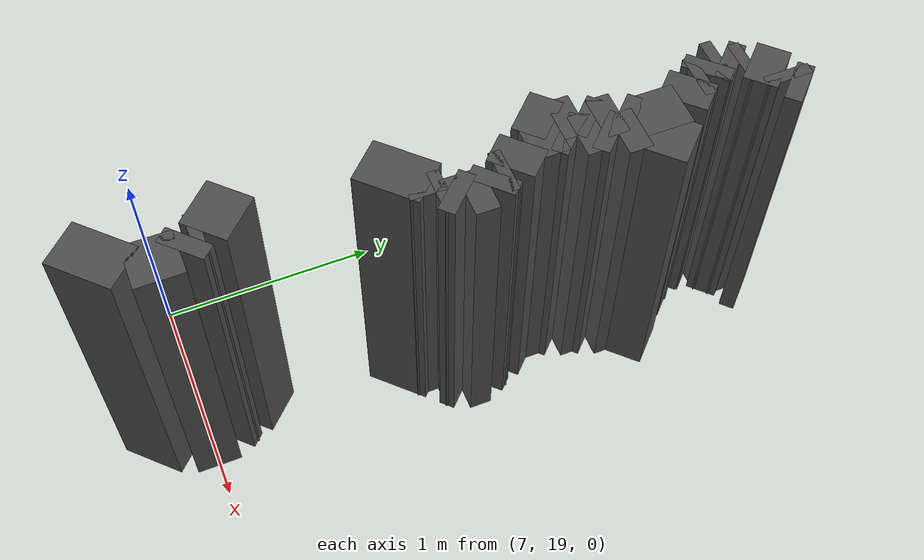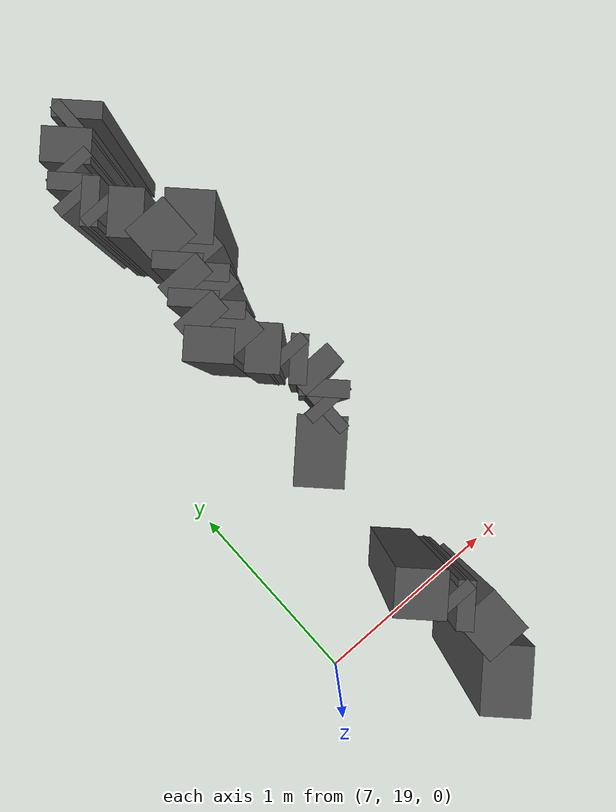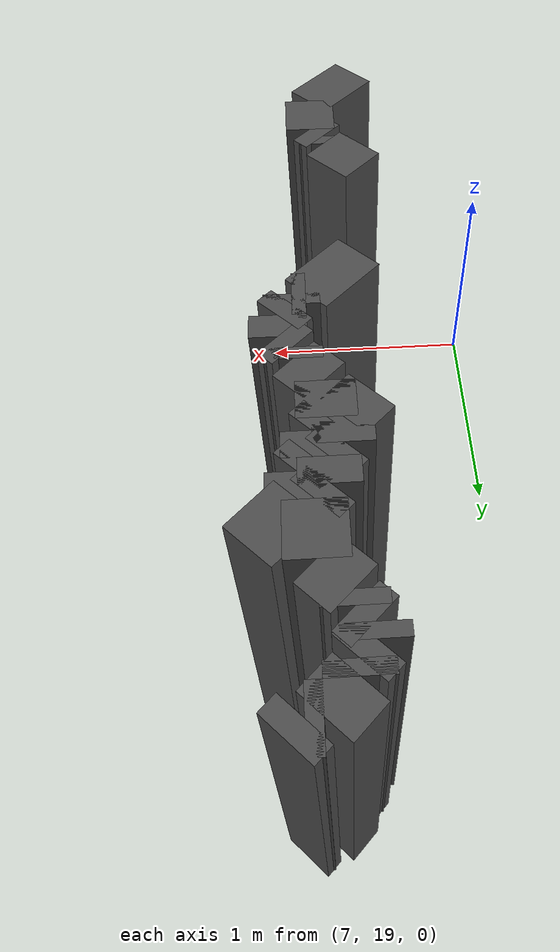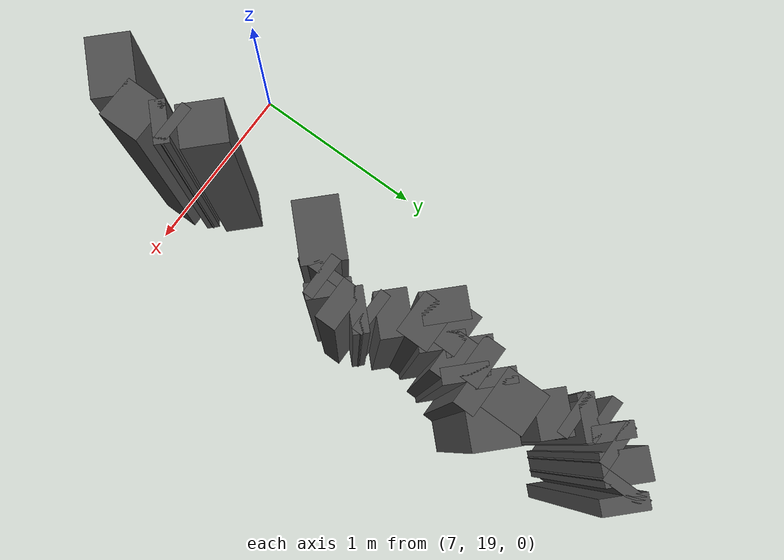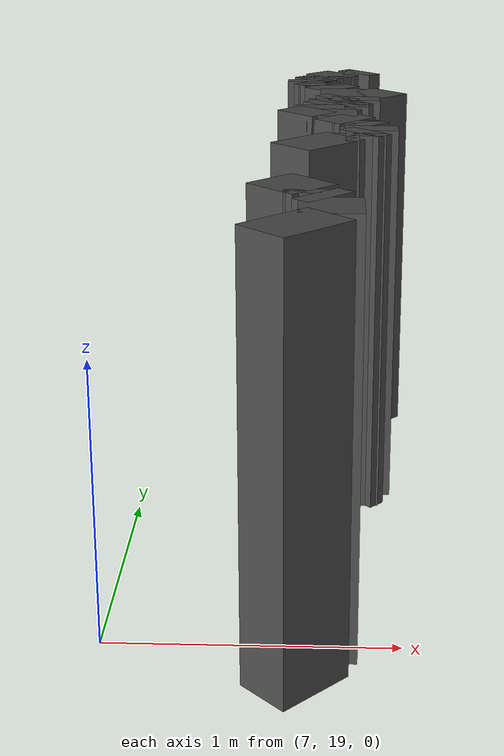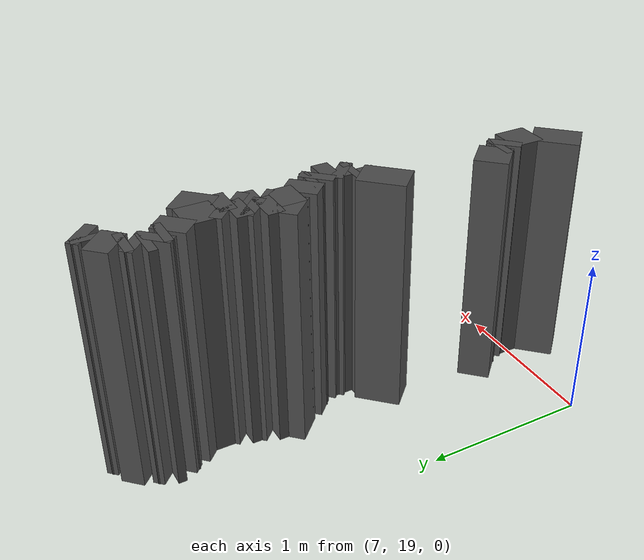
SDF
<sdf version="1.9">
 <model name="generated_walls">
  <static>true</static>
  <link name="wall_161_248">
   <pose>7.650 20.550 0.75 0 0 0.785</pose>
   <collision name="collision"><geometry><box><size>0.141 0.2 1.5</size></box></geometry></collision>
   <visual name="visual">
    <geometry><box><size>0.141 0.2 1.5</size></box></geometry>
    <material><ambient>0.3 0.3 0.3 1</ambient></material>
   </visual>
  </link>
  <link name="wall_161_249">
   <pose>7.700 20.650 0.75 0 0 1.571</pose>
   <collision name="collision"><geometry><box><size>0.100 0.2 1.5</size></box></geometry></collision>
   <visual name="visual">
    <geometry><box><size>0.100 0.2 1.5</size></box></geometry>
    <material><ambient>0.3 0.3 0.3 1</ambient></material>
   </visual>
  </link>
  <link name="wall_161_250">
   <pose>7.725 20.725 0.75 0 0 0.785</pose>
   <collision name="collision"><geometry><box><size>0.071 0.2 1.5</size></box></geometry></collision>
   <visual name="visual">
    <geometry><box><size>0.071 0.2 1.5</size></box></geometry>
    <material><ambient>0.3 0.3 0.3 1</ambient></material>
   </visual>
  </link>
  <link name="wall_161_251">
   <pose>7.750 20.800 0.75 0 0 1.571</pose>
   <collision name="collision"><geometry><box><size>0.100 0.2 1.5</size></box></geometry></collision>
   <visual name="visual">
    <geometry><box><size>0.100 0.2 1.5</size></box></geometry>
    <material><ambient>0.3 0.3 0.3 1</ambient></material>
   </visual>
  </link>
  <link name="wall_161_252">
   <pose>7.775 20.875 0.75 0 0 0.785</pose>
   <collision name="collision"><geometry><box><size>0.071 0.2 1.5</size></box></geometry></collision>
   <visual name="visual">
    <geometry><box><size>0.071 0.2 1.5</size></box></geometry>
    <material><ambient>0.3 0.3 0.3 1</ambient></material>
   </visual>
  </link>
  <link name="wall_161_253">
   <pose>7.800 21.000 0.75 0 0 1.571</pose>
   <collision name="collision"><geometry><box><size>0.200 0.2 1.5</size></box></geometry></collision>
   <visual name="visual">
    <geometry><box><size>0.200 0.2 1.5</size></box></geometry>
    <material><ambient>0.3 0.3 0.3 1</ambient></material>
   </visual>
  </link>
  <link name="wall_161_254">
   <pose>7.750 21.150 0.75 0 0 2.356</pose>
   <collision name="collision"><geometry><box><size>0.141 0.2 1.5</size></box></geometry></collision>
   <visual name="visual">
    <geometry><box><size>0.141 0.2 1.5</size></box></geometry>
    <material><ambient>0.3 0.3 0.3 1</ambient></material>
   </visual>
  </link>
  <link name="wall_161_255">
   <pose>7.700 21.225 0.75 0 0 1.571</pose>
   <collision name="collision"><geometry><box><size>0.050 0.2 1.5</size></box></geometry></collision>
   <visual name="visual">
    <geometry><box><size>0.050 0.2 1.5</size></box></geometry>
    <material><ambient>0.3 0.3 0.3 1</ambient></material>
   </visual>
  </link>
  <link name="wall_161_256">
   <pose>7.675 21.275 0.75 0 0 2.356</pose>
   <collision name="collision"><geometry><box><size>0.071 0.2 1.5</size></box></geometry></collision>
   <visual name="visual">
    <geometry><box><size>0.071 0.2 1.5</size></box></geometry>
    <material><ambient>0.3 0.3 0.3 1</ambient></material>
   </visual>
  </link>
  <link name="wall_161_257">
   <pose>7.650 21.325 0.75 0 0 1.571</pose>
   <collision name="collision"><geometry><box><size>0.050 0.2 1.5</size></box></geometry></collision>
   <visual name="visual">
    <geometry><box><size>0.050 0.2 1.5</size></box></geometry>
    <material><ambient>0.3 0.3 0.3 1</ambient></material>
   </visual>
  </link>
  <link name="wall_161_258">
   <pose>7.675 21.375 0.75 0 0 0.785</pose>
   <collision name="collision"><geometry><box><size>0.071 0.2 1.5</size></box></geometry></collision>
   <visual name="visual">
    <geometry><box><size>0.071 0.2 1.5</size></box></geometry>
    <material><ambient>0.3 0.3 0.3 1</ambient></material>
   </visual>
  </link>
  <link name="wall_161_259">
   <pose>7.700 21.425 0.75 0 0 1.571</pose>
   <collision name="collision"><geometry><box><size>0.050 0.2 1.5</size></box></geometry></collision>
   <visual name="visual">
    <geometry><box><size>0.050 0.2 1.5</size></box></geometry>
    <material><ambient>0.3 0.3 0.3 1</ambient></material>
   </visual>
  </link>
  <link name="wall_161_260">
   <pose>7.750 21.500 0.75 0 0 0.785</pose>
   <collision name="collision"><geometry><box><size>0.141 0.2 1.5</size></box></geometry></collision>
   <visual name="visual">
    <geometry><box><size>0.141 0.2 1.5</size></box></geometry>
    <material><ambient>0.3 0.3 0.3 1</ambient></material>
   </visual>
  </link>
  <link name="wall_161_261">
   <pose>7.825 21.550 0.75 0 0 0.000</pose>
   <collision name="collision"><geometry><box><size>0.050 0.2 1.5</size></box></geometry></collision>
   <visual name="visual">
    <geometry><box><size>0.050 0.2 1.5</size></box></geometry>
    <material><ambient>0.3 0.3 0.3 1</ambient></material>
   </visual>
  </link>
  <link name="wall_161_262">
   <pose>7.875 21.575 0.75 0 0 0.785</pose>
   <collision name="collision"><geometry><box><size>0.071 0.2 1.5</size></box></geometry></collision>
   <visual name="visual">
    <geometry><box><size>0.071 0.2 1.5</size></box></geometry>
    <material><ambient>0.3 0.3 0.3 1</ambient></material>
   </visual>
  </link>
  <link name="wall_161_858">
   <pose>7.925 20.975 0.75 0 0 -2.356</pose>
   <collision name="collision"><geometry><box><size>0.212 0.2 1.5</size></box></geometry></collision>
   <visual name="visual">
    <geometry><box><size>0.212 0.2 1.5</size></box></geometry>
    <material><ambient>0.3 0.3 0.3 1</ambient></material>
   </visual>
  </link>
  <link name="wall_161_859">
   <pose>7.850 20.850 0.75 0 0 -1.571</pose>
   <collision name="collision"><geometry><box><size>0.100 0.2 1.5</size></box></geometry></collision>
   <visual name="visual">
    <geometry><box><size>0.100 0.2 1.5</size></box></geometry>
    <material><ambient>0.3 0.3 0.3 1</ambient></material>
   </visual>
  </link>
  <link name="wall_161_860">
   <pose>7.825 20.775 0.75 0 0 -2.356</pose>
   <collision name="collision"><geometry><box><size>0.071 0.2 1.5</size></box></geometry></collision>
   <visual name="visual">
    <geometry><box><size>0.071 0.2 1.5</size></box></geometry>
    <material><ambient>0.3 0.3 0.3 1</ambient></material>
   </visual>
  </link>
  <link name="wall_161_861">
   <pose>7.800 20.700 0.75 0 0 -1.571</pose>
   <collision name="collision"><geometry><box><size>0.100 0.2 1.5</size></box></geometry></collision>
   <visual name="visual">
    <geometry><box><size>0.100 0.2 1.5</size></box></geometry>
    <material><ambient>0.3 0.3 0.3 1</ambient></material>
   </visual>
  </link>
  <link name="wall_161_862">
   <pose>7.775 20.625 0.75 0 0 -2.356</pose>
   <collision name="collision"><geometry><box><size>0.071 0.2 1.5</size></box></geometry></collision>
   <visual name="visual">
    <geometry><box><size>0.071 0.2 1.5</size></box></geometry>
    <material><ambient>0.3 0.3 0.3 1</ambient></material>
   </visual>
  </link>
  <link name="wall_161_863">
   <pose>7.750 20.525 0.75 0 0 -1.571</pose>
   <collision name="collision"><geometry><box><size>0.150 0.2 1.5</size></box></geometry></collision>
   <visual name="visual">
    <geometry><box><size>0.150 0.2 1.5</size></box></geometry>
    <material><ambient>0.3 0.3 0.3 1</ambient></material>
   </visual>
  </link>
  <link name="wall_161_864">
   <pose>7.800 20.400 0.75 0 0 -0.785</pose>
   <collision name="collision"><geometry><box><size>0.141 0.2 1.5</size></box></geometry></collision>
   <visual name="visual">
    <geometry><box><size>0.141 0.2 1.5</size></box></geometry>
    <material><ambient>0.3 0.3 0.3 1</ambient></material>
   </visual>
  </link>
  <link name="wall_161_865">
   <pose>7.850 20.325 0.75 0 0 -1.571</pose>
   <collision name="collision"><geometry><box><size>0.050 0.2 1.5</size></box></geometry></collision>
   <visual name="visual">
    <geometry><box><size>0.050 0.2 1.5</size></box></geometry>
    <material><ambient>0.3 0.3 0.3 1</ambient></material>
   </visual>
  </link>
  <link name="wall_161_866">
   <pose>7.875 20.275 0.75 0 0 -0.785</pose>
   <collision name="collision"><geometry><box><size>0.071 0.2 1.5</size></box></geometry></collision>
   <visual name="visual">
    <geometry><box><size>0.071 0.2 1.5</size></box></geometry>
    <material><ambient>0.3 0.3 0.3 1</ambient></material>
   </visual>
  </link>
  <link name="wall_161_867">
   <pose>7.900 20.200 0.75 0 0 -1.571</pose>
   <collision name="collision"><geometry><box><size>0.100 0.2 1.5</size></box></geometry></collision>
   <visual name="visual">
    <geometry><box><size>0.100 0.2 1.5</size></box></geometry>
    <material><ambient>0.3 0.3 0.3 1</ambient></material>
   </visual>
  </link>
  <link name="wall_161_868">
   <pose>7.875 20.125 0.75 0 0 -2.356</pose>
   <collision name="collision"><geometry><box><size>0.071 0.2 1.5</size></box></geometry></collision>
   <visual name="visual">
    <geometry><box><size>0.071 0.2 1.5</size></box></geometry>
    <material><ambient>0.3 0.3 0.3 1</ambient></material>
   </visual>
  </link>
  <link name="wall_161_869">
   <pose>7.850 20.075 0.75 0 0 -1.571</pose>
   <collision name="collision"><geometry><box><size>0.050 0.2 1.5</size></box></geometry></collision>
   <visual name="visual">
    <geometry><box><size>0.050 0.2 1.5</size></box></geometry>
    <material><ambient>0.3 0.3 0.3 1</ambient></material>
   </visual>
  </link>
  <link name="wall_161_870">
   <pose>7.825 20.050 0.75 0 0 3.142</pose>
   <collision name="collision"><geometry><box><size>0.050 0.2 1.5</size></box></geometry></collision>
   <visual name="visual">
    <geometry><box><size>0.050 0.2 1.5</size></box></geometry>
    <material><ambient>0.3 0.3 0.3 1</ambient></material>
   </visual>
  </link>
  <link name="wall_161_871">
   <pose>7.700 19.950 0.75 0 0 -2.356</pose>
   <collision name="collision"><geometry><box><size>0.283 0.2 1.5</size></box></geometry></collision>
   <visual name="visual">
    <geometry><box><size>0.283 0.2 1.5</size></box></geometry>
    <material><ambient>0.3 0.3 0.3 1</ambient></material>
   </visual>
  </link>
  <link name="wall_161_874">
   <pose>7.625 19.275 0.75 0 0 -0.785</pose>
   <collision name="collision"><geometry><box><size>0.212 0.2 1.5</size></box></geometry></collision>
   <visual name="visual">
    <geometry><box><size>0.212 0.2 1.5</size></box></geometry>
    <material><ambient>0.3 0.3 0.3 1</ambient></material>
   </visual>
  </link>
  <link name="wall_161_875">
   <pose>7.700 19.175 0.75 0 0 -1.571</pose>
   <collision name="collision"><geometry><box><size>0.050 0.2 1.5</size></box></geometry></collision>
   <visual name="visual">
    <geometry><box><size>0.050 0.2 1.5</size></box></geometry>
    <material><ambient>0.3 0.3 0.3 1</ambient></material>
   </visual>
  </link>
  <link name="wall_161_876">
   <pose>7.725 19.125 0.75 0 0 -0.785</pose>
   <collision name="collision"><geometry><box><size>0.071 0.2 1.5</size></box></geometry></collision>
   <visual name="visual">
    <geometry><box><size>0.071 0.2 1.5</size></box></geometry>
    <material><ambient>0.3 0.3 0.3 1</ambient></material>
   </visual>
  </link>
  <link name="wall_161_877">
   <pose>7.750 19.000 0.75 0 0 -1.571</pose>
   <collision name="collision"><geometry><box><size>0.200 0.2 1.5</size></box></geometry></collision>
   <visual name="visual">
    <geometry><box><size>0.200 0.2 1.5</size></box></geometry>
    <material><ambient>0.3 0.3 0.3 1</ambient></material>
   </visual>
  </link>
  <link name="wall_161_878">
   <pose>7.650 18.800 0.75 0 0 -2.356</pose>
   <collision name="collision"><geometry><box><size>0.283 0.2 1.5</size></box></geometry></collision>
   <visual name="visual">
    <geometry><box><size>0.283 0.2 1.5</size></box></geometry>
    <material><ambient>0.3 0.3 0.3 1</ambient></material>
   </visual>
  </link>
 </model>
</sdf>
